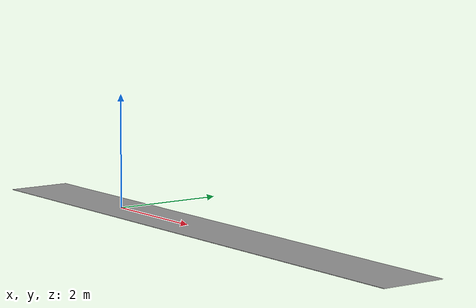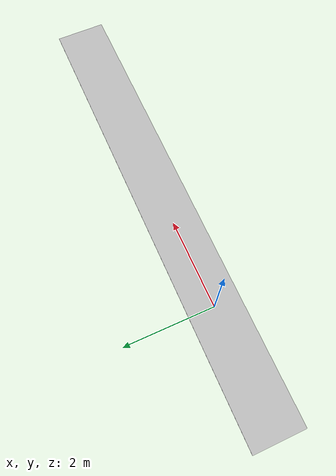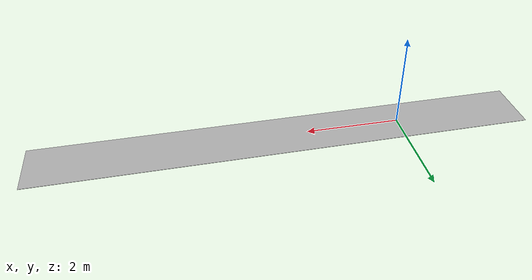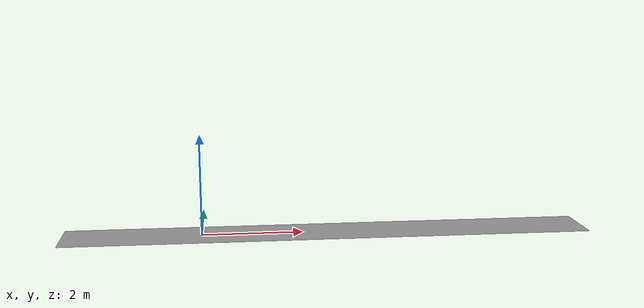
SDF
<?xml version='1.0'?>
<sdf version='1.6'>
  <model name='agv_path_2021'>
    <static>true</static>
    <link name="link">
      <pose>2.5 0 0 0 0 0</pose>
      <visual name="visual">
        <geometry>
          <box>
            <size>10.5 1.145870 0.009</size>
          </box>
        </geometry>
        <material>
          <script>
            <uri>model://agv_path/materials/scripts</uri>
            <uri>model://agv_path/materials/textures</uri>
            <name>AGVPathTexture</name>
          </script>
        </material>
      </visual>

    </link>
  </model>
</sdf>
